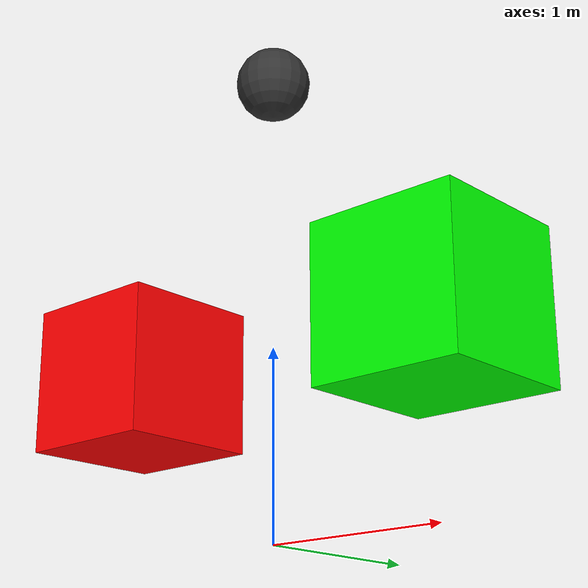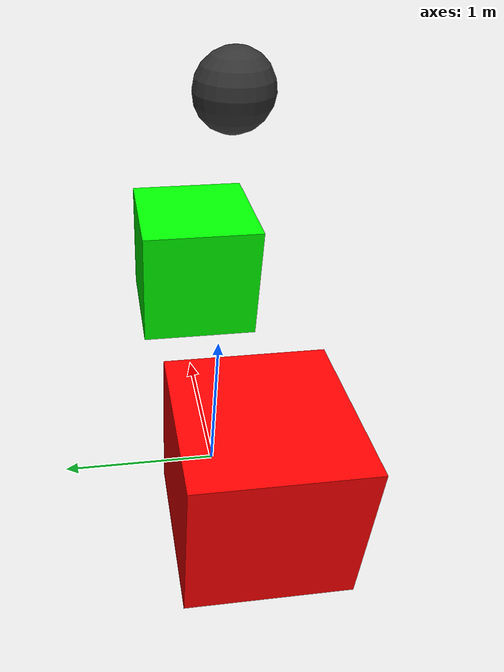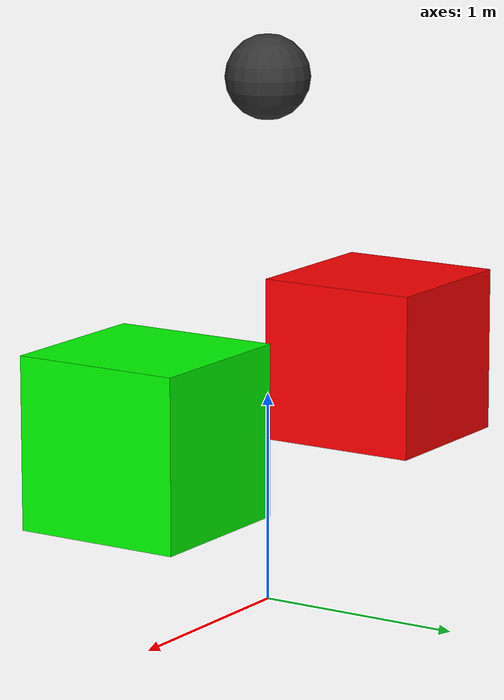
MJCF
<mujoco>
  <option gravity="0 0 -9.81"/>
  <worldbody>
    <light diffuse="0.5 0.5 0.5" pos="0 0 5" dir="0 0 -1"/>
    <body name="ground_plane" pos="0 0 -10">
      <geom type="plane" size="50 50 0.1" rgba="0.9 0.9 0.9 1" friction="1 1 1"/>
    </body>
    <body name="pulley_support" pos="0 0 2.5">
      <geom type="sphere" size="0.2" rgba="0.2 0.2 0.2 1"/>
    </body>
    <body name="block_heavy" pos="-1 0 1">
      <geom type="box" size="0.4 0.4 0.4" mass="6" rgba="1 0 0 1"/>
      <joint type="free"/>
    </body>
    <body name="block_light" pos="1 0 1">
      <geom type="box" size="0.4 0.4 0.4" mass="1" rgba="0 1 0 1"/>
      <joint type="free"/>
    </body>
  </worldbody>
</mujoco>
